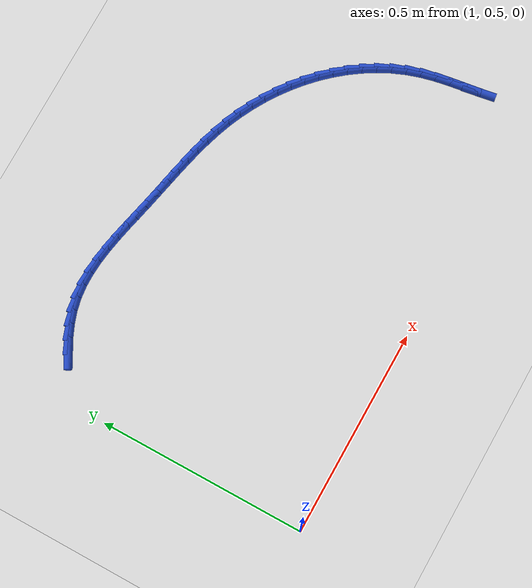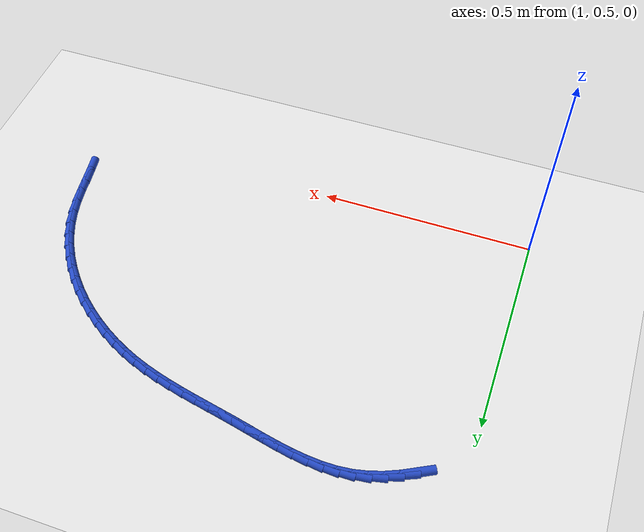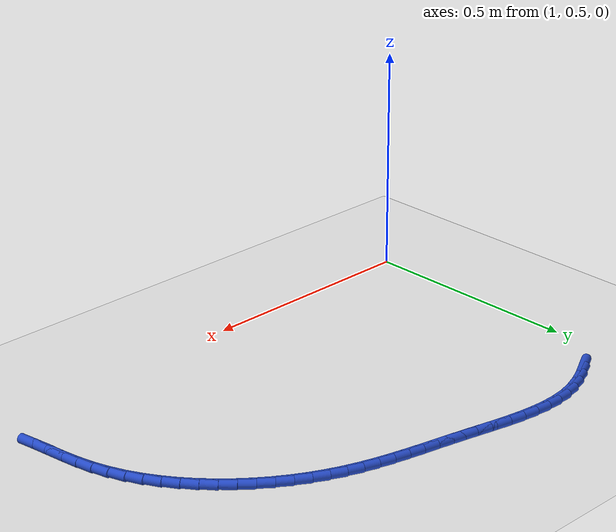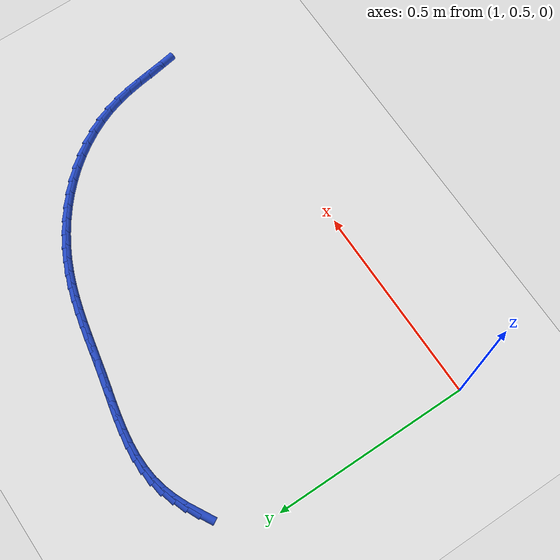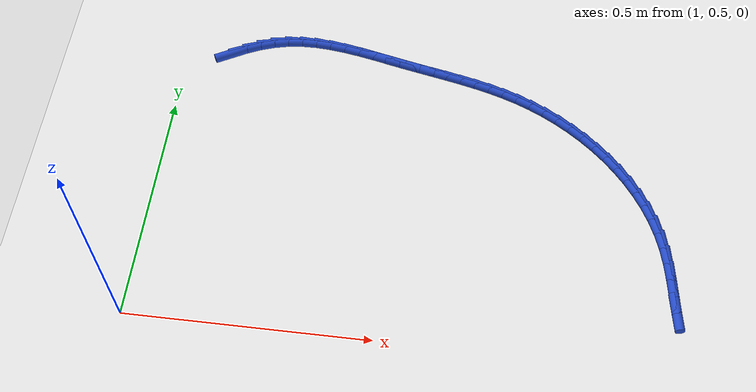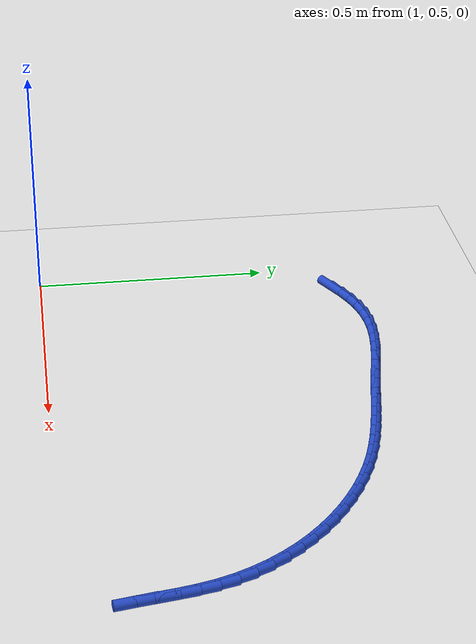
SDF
<sdf version="1.6">
 <world name="default">
  <model name="ground_plane">
   <static>1</static>
   <link name="link">
    <collision name="collision">
     <geometry><plane><normal>0 0 1</normal><size>100 100</size></plane></geometry>
     <surface><friction><ode><mu>100</mu><mu2>50</mu2></ode></friction></surface>
    </collision>
    <visual name="visual">
     <cast_shadows>0</cast_shadows>
     <geometry><plane><normal>0 0 1</normal><size>100 100</size></plane></geometry>
     <material>
      <script><uri>file://media/materials/scripts/gazebo.material</uri><name>Gazebo/WhiteGlow</name></script>
     </material>
    </visual>
   </link>
  </model>
  <model name="line">
   <link name="link_55">
    <pose>1.0984428740891006 1.1482082732621441 0.01 0 1.57 0.49788148652644393</pose>
    <collision name="collision">
     <geometry><cylinder><radius>0.01</radius><length>0.08</length></cylinder></geometry>
    </collision>
    <visual name="visual">
     <material>
      <script><name>Gazebo/Blue</name><uri>file://media/materials/scripts/gazebo.material</uri></script>
     </material>
     <geometry><cylinder><radius>0.01</radius><length>0.08</length></cylinder></geometry>
    </visual>
   </link>
   <link name="link_56">
    <pose>1.1272601869756693 1.1638720645824843 0.01 0 1.57 0.41964210380648614</pose>
    <collision name="collision">
     <geometry><cylinder><radius>0.01</radius><length>0.08</length></cylinder></geometry>
    </collision>
    <visual name="visual">
     <material>
      <script><name>Gazebo/Blue</name><uri>file://media/materials/scripts/gazebo.material</uri></script>
     </material>
     <geometry><cylinder><radius>0.01</radius><length>0.08</length></cylinder></geometry>
    </visual>
   </link>
   <link name="link_57">
    <pose>1.1566703030461838 1.1769931921280947 0.01 0 1.57 0.3279196526299374</pose>
    <collision name="collision">
     <geometry><cylinder><radius>0.01</radius><length>0.08</length></cylinder></geometry>
    </collision>
    <visual name="visual">
     <material>
      <script><name>Gazebo/Blue</name><uri>file://media/materials/scripts/gazebo.material</uri></script>
     </material>
     <geometry><cylinder><radius>0.01</radius><length>0.08</length></cylinder></geometry>
    </visual>
   </link>
   <link name="link_58">
    <pose>1.1867256022981238 1.1872180680124333 0.01 0 1.57 0.22303592653227677</pose>
    <collision name="collision">
     <geometry><cylinder><radius>0.01</radius><length>0.08</length></cylinder></geometry>
    </collision>
    <visual name="visual">
     <material>
      <script><name>Gazebo/Blue</name><uri>file://media/materials/scripts/gazebo.material</uri></script>
     </material>
     <geometry><cylinder><radius>0.01</radius><length>0.08</length></cylinder></geometry>
    </visual>
   </link>
   <link name="link_59">
    <pose>1.2174784647289691 1.1941931043489578 0.01 0 1.57 0.11048410661142259</pose>
    <collision name="collision">
     <geometry><cylinder><radius>0.01</radius><length>0.08</length></cylinder></geometry>
    </collision>
    <visual name="visual">
     <material>
      <script><name>Gazebo/Blue</name><uri>file://media/materials/scripts/gazebo.material</uri></script>
     </material>
     <geometry><cylinder><radius>0.01</radius><length>0.08</length></cylinder></geometry>
    </visual>
   </link>
   <link name="link_60">
    <pose>1.2489569885513387 1.197685201545745 0.01 0 1.57 0.010984286786511463</pose>
    <collision name="collision">
     <geometry><cylinder><radius>0.01</radius><length>0.08</length></cylinder></geometry>
    </collision>
    <visual name="visual">
     <material>
      <script><name>Gazebo/Blue</name><uri>file://media/materials/scripts/gazebo.material</uri></script>
     </material>
     <geometry><cylinder><radius>0.01</radius><length>0.08</length></cylinder></geometry>
    </visual>
   </link>
   <link name="link_61">
    <pose>1.2810730451032468 1.1980379877098966 0.01 0 1.57 -0.06947088128762369</pose>
    <collision name="collision">
     <geometry><cylinder><radius>0.01</radius><length>0.08</length></cylinder></geometry>
    </collision>
    <visual name="visual">
     <material>
      <script><name>Gazebo/Blue</name><uri>file://media/materials/scripts/gazebo.material</uri></script>
     </material>
     <geometry><cylinder><radius>0.01</radius><length>0.08</length></cylinder></geometry>
    </visual>
   </link>
   <link name="link_62">
    <pose>1.31370377080805 1.19576744856781 0.01 0 1.57 -0.13180299623149003</pose>
    <collision name="collision">
     <geometry><cylinder><radius>0.01</radius><length>0.08</length></cylinder></geometry>
    </collision>
    <visual name="visual">
     <material>
      <script><name>Gazebo/Blue</name><uri>file://media/materials/scripts/gazebo.material</uri></script>
     </material>
     <geometry><cylinder><radius>0.01</radius><length>0.08</length></cylinder></geometry>
    </visual>
   </link>
   <link name="link_63">
    <pose>1.3467262958686452 1.1913896007123346 0.01 0 1.57 -0.1774143047019592</pose>
    <collision name="collision">
     <geometry><cylinder><radius>0.01</radius><length>0.08</length></cylinder></geometry>
    </collision>
    <visual name="visual">
     <material>
      <script><name>Gazebo/Blue</name><uri>file://media/materials/scripts/gazebo.material</uri></script>
     </material>
     <geometry><cylinder><radius>0.01</radius><length>0.08</length></cylinder></geometry>
    </visual>
   </link>
   <link name="link_64">
    <pose>1.3800177504879305 1.1854204607363203 0.01 0 1.57 -0.2076376558232692</pose>
    <collision name="collision">
     <geometry><cylinder><radius>0.01</radius><length>0.08</length></cylinder></geometry>
    </collision>
    <visual name="visual">
     <material>
      <script><name>Gazebo/Blue</name><uri>file://media/materials/scripts/gazebo.material</uri></script>
     </material>
     <geometry><cylinder><radius>0.01</radius><length>0.08</length></cylinder></geometry>
    </visual>
   </link>
   <link name="link_65">
    <pose>1.4134552648688032 1.178376045232617 0.01 0 1.57 -0.22344729937029575</pose>
    <collision name="collision">
     <geometry><cylinder><radius>0.01</radius><length>0.08</length></cylinder></geometry>
    </collision>
    <visual name="visual">
     <material>
      <script><name>Gazebo/Blue</name><uri>file://media/materials/scripts/gazebo.material</uri></script>
     </material>
     <geometry><cylinder><radius>0.01</radius><length>0.08</length></cylinder></geometry>
    </visual>
   </link>
   <link name="link_66">
    <pose>1.4469159692141609 1.1707723707940743 0.01 0 1.57 -0.2253246809924111</pose>
    <collision name="collision">
     <geometry><cylinder><radius>0.01</radius><length>0.08</length></cylinder></geometry>
    </collision>
    <visual name="visual">
     <material>
      <script><name>Gazebo/Blue</name><uri>file://media/materials/scripts/gazebo.material</uri></script>
     </material>
     <geometry><cylinder><radius>0.01</radius><length>0.08</length></cylinder></geometry>
    </visual>
   </link>
   <link name="link_67">
    <pose>1.480276993726901 1.1631254540135423 0.01 0 1.57 -0.21560855269663176</pose>
    <collision name="collision">
     <geometry><cylinder><radius>0.01</radius><length>0.08</length></cylinder></geometry>
    </collision>
    <visual name="visual">
     <material>
      <script><name>Gazebo/Blue</name><uri>file://media/materials/scripts/gazebo.material</uri></script>
     </material>
     <geometry><cylinder><radius>0.01</radius><length>0.08</length></cylinder></geometry>
    </visual>
   </link>
   <link name="link_68">
    <pose>1.5134262525850586 1.1558653396549476 0.01 0 1.57 -0.20876481389615256</pose>
    <collision name="collision">
     <geometry><cylinder><radius>0.01</radius><length>0.08</length></cylinder></geometry>
    </collision>
    <visual name="visual">
     <material>
      <script><name>Gazebo/Blue</name><uri>file://media/materials/scripts/gazebo.material</uri></script>
     </material>
     <geometry><cylinder><radius>0.01</radius><length>0.08</length></cylinder></geometry>
    </visual>
   </link>
   <link name="link_69">
    <pose>1.5463174875717518 1.148897282733533 0.01 0 1.57 -0.21052108686653578</pose>
    <collision name="collision">
     <geometry><cylinder><radius>0.01</radius><length>0.08</length></cylinder></geometry>
    </collision>
    <visual name="visual">
     <material>
      <script><name>Gazebo/Blue</name><uri>file://media/materials/scripts/gazebo.material</uri></script>
     </material>
     <geometry><cylinder><radius>0.01</radius><length>0.08</length></cylinder></geometry>
    </visual>
   </link>
   <link name="link_70">
    <pose>1.5789292741945764 1.1419285592553978 0.01 0 1.57 -0.22109387741301262</pose>
    <collision name="collision">
     <geometry><cylinder><radius>0.01</radius><length>0.08</length></cylinder></geometry>
    </collision>
    <visual name="visual">
     <material>
      <script><name>Gazebo/Blue</name><uri>file://media/materials/scripts/gazebo.material</uri></script>
     </material>
     <geometry><cylinder><radius>0.01</radius><length>0.08</length></cylinder></geometry>
    </visual>
   </link>
   <link name="link_71">
    <pose>1.6112402337181555 1.1346660804432311 0.01 0 1.57 -0.2406234395353036</pose>
    <collision name="collision">
     <geometry><cylinder><radius>0.01</radius><length>0.08</length></cylinder></geometry>
    </collision>
    <visual name="visual">
     <material>
      <script><name>Gazebo/Blue</name><uri>file://media/materials/scripts/gazebo.material</uri></script>
     </material>
     <geometry><cylinder><radius>0.01</radius><length>0.08</length></cylinder></geometry>
    </visual>
   </link>
   <link name="link_72">
    <pose>1.6432289874071124 1.1268167575197203 0.01 0 1.57 -0.26915439524321966</pose>
    <collision name="collision">
     <geometry><cylinder><radius>0.01</radius><length>0.08</length></cylinder></geometry>
    </collision>
    <visual name="visual">
     <material>
      <script><name>Gazebo/Blue</name><uri>file://media/materials/scripts/gazebo.material</uri></script>
     </material>
     <geometry><cylinder><radius>0.01</radius><length>0.08</length></cylinder></geometry>
    </visual>
   </link>
   <link name="link_73">
    <pose>1.6748741565260692 1.1180875017075547 0.01 0 1.57 -0.3065856337871052</pose>
    <collision name="collision">
     <geometry><cylinder><radius>0.01</radius><length>0.08</length></cylinder></geometry>
    </collision>
    <visual name="visual">
     <material>
      <script><name>Gazebo/Blue</name><uri>file://media/materials/scripts/gazebo.material</uri></script>
     </material>
     <geometry><cylinder><radius>0.01</radius><length>0.08</length></cylinder></geometry>
    </visual>
   </link>
   <link name="link_74">
    <pose>1.7061543623396493 1.1081852242294221 0.01 0 1.57 -0.35260381337323</pose>
    <collision name="collision">
     <geometry><cylinder><radius>0.01</radius><length>0.08</length></cylinder></geometry>
    </collision>
    <visual name="visual">
     <material>
      <script><name>Gazebo/Blue</name><uri>file://media/materials/scripts/gazebo.material</uri></script>
     </material>
     <geometry><cylinder><radius>0.01</radius><length>0.08</length></cylinder></geometry>
    </visual>
   </link>
   <link name="link_75">
    <pose>1.7370482261124753 1.0968168363080113 0.01 0 1.57 -0.4064503517024111</pose>
    <collision name="collision">
     <geometry><cylinder><radius>0.01</radius><length>0.08</length></cylinder></geometry>
    </collision>
    <visual name="visual">
     <material>
      <script><name>Gazebo/Blue</name><uri>file://media/materials/scripts/gazebo.material</uri></script>
     </material>
     <geometry><cylinder><radius>0.01</radius><length>0.08</length></cylinder></geometry>
    </visual>
   </link>
   <link name="link_76">
    <pose>1.7675313731486328 1.0836963564998445 0.01 0 1.57 -0.4637284282777598</pose>
    <collision name="collision">
     <geometry><cylinder><radius>0.01</radius><length>0.08</length></cylinder></geometry>
    </collision>
    <visual name="visual">
     <material>
      <script><name>Gazebo/Blue</name><uri>file://media/materials/scripts/gazebo.material</uri></script>
     </material>
     <geometry><cylinder><radius>0.01</radius><length>0.08</length></cylinder></geometry>
    </visual>
   </link>
   <link name="link_77">
    <pose>1.7975091962352867 1.068704416351643 0.01 0 1.57 -0.5208827515376342</pose>
    <collision name="collision">
     <geometry><cylinder><radius>0.01</radius><length>0.08</length></cylinder></geometry>
    </collision>
    <visual name="visual">
     <material>
      <script><name>Gazebo/Blue</name><uri>file://media/materials/scripts/gazebo.material</uri></script>
     </material>
     <geometry><cylinder><radius>0.01</radius><length>0.08</length></cylinder></geometry>
    </visual>
   </link>
   <link name="link_78">
    <pose>1.8268161113073254 1.0518900261912338 0.01 0 1.57 -0.578265450117996</pose>
    <collision name="collision">
     <geometry><cylinder><radius>0.01</radius><length>0.08</length></cylinder></geometry>
    </collision>
    <visual name="visual">
     <material>
      <script><name>Gazebo/Blue</name><uri>file://media/materials/scripts/gazebo.material</uri></script>
     </material>
     <geometry><cylinder><radius>0.01</radius><length>0.08</length></cylinder></geometry>
    </visual>
   </link>
   <link name="link_79">
    <pose>1.8552833894668423 1.0333096568507618 0.01 0 1.57 -0.6363706577211106</pose>
    <collision name="collision">
     <geometry><cylinder><radius>0.01</radius><length>0.08</length></cylinder></geometry>
    </collision>
    <visual name="visual">
     <material>
      <script><name>Gazebo/Blue</name><uri>file://media/materials/scripts/gazebo.material</uri></script>
     </material>
     <geometry><cylinder><radius>0.01</radius><length>0.08</length></cylinder></geometry>
    </visual>
   </link>
   <link name="link_80">
    <pose>1.88274230181593 1.013019779162372 0.01 0 1.57 -0.695667213584342</pose>
    <collision name="collision">
     <geometry><cylinder><radius>0.01</radius><length>0.08</length></cylinder></geometry>
    </collision>
    <visual name="visual">
     <material>
      <script><name>Gazebo/Blue</name><uri>file://media/materials/scripts/gazebo.material</uri></script>
     </material>
     <geometry><cylinder><radius>0.01</radius><length>0.08</length></cylinder></geometry>
    </visual>
   </link>
   <link name="link_81">
    <pose>1.909024119456681 0.9910768639582103 0.01 0 1.57 -0.7565974972201347</pose>
    <collision name="collision">
     <geometry><cylinder><radius>0.01</radius><length>0.08</length></cylinder></geometry>
    </collision>
    <visual name="visual">
     <material>
      <script><name>Gazebo/Blue</name><uri>file://media/materials/scripts/gazebo.material</uri></script>
     </material>
     <geometry><cylinder><radius>0.01</radius><length>0.08</length></cylinder></geometry>
    </visual>
   </link>
   <link name="link_82">
    <pose>1.9339601134911888 0.9675373820704216 0.01 0 1.57 -0.819572510224236</pose>
    <collision name="collision">
     <geometry><cylinder><radius>0.01</radius><length>0.08</length></cylinder></geometry>
    </collision>
    <visual name="visual">
     <material>
      <script><name>Gazebo/Blue</name><uri>file://media/materials/scripts/gazebo.material</uri></script>
     </material>
     <geometry><cylinder><radius>0.01</radius><length>0.08</length></cylinder></geometry>
    </visual>
   </link>
   <link name="link_83">
    <pose>1.9573815550215454 0.9424578043311503 0.01 0 1.57 -0.8849624031255212</pose>
    <collision name="collision">
     <geometry><cylinder><radius>0.01</radius><length>0.08</length></cylinder></geometry>
    </collision>
    <visual name="visual">
     <material>
      <script><name>Gazebo/Blue</name><uri>file://media/materials/scripts/gazebo.material</uri></script>
     </material>
     <geometry><cylinder><radius>0.01</radius><length>0.08</length></cylinder></geometry>
    </visual>
   </link>
   <link name="link_84">
    <pose>1.979119715149844 0.9158946015725429 0.01 0 1.57 -0.9530818018559315</pose>
    <collision name="collision">
     <geometry><cylinder><radius>0.01</radius><length>0.08</length></cylinder></geometry>
    </collision>
    <visual name="visual">
     <material>
      <script><name>Gazebo/Blue</name><uri>file://media/materials/scripts/gazebo.material</uri></script>
     </material>
     <geometry><cylinder><radius>0.01</radius><length>0.08</length></cylinder></geometry>
    </visual>
   </link>
   <link name="link_85">
    <pose>1.9990058649781774 0.8879042446267433 0.01 0 1.57 -1.0241697038850872</pose>
    <collision name="collision">
     <geometry><cylinder><radius>0.01</radius><length>0.08</length></cylinder></geometry>
    </collision>
    <visual name="visual">
     <material>
      <script><name>Gazebo/Blue</name><uri>file://media/materials/scripts/gazebo.material</uri></script>
     </material>
     <geometry><cylinder><radius>0.01</radius><length>0.08</length></cylinder></geometry>
    </visual>
   </link>
   <link name="link_86">
    <pose>2.0168712756086378 0.8585432043258979 0.01 0 1.57 -1.0983645292709487</pose>
    <collision name="collision">
     <geometry><cylinder><radius>0.01</radius><length>0.08</length></cylinder></geometry>
    </collision>
    <visual name="visual">
     <material>
      <script><name>Gazebo/Blue</name><uri>file://media/materials/scripts/gazebo.material</uri></script>
     </material>
     <geometry><cylinder><radius>0.01</radius><length>0.08</length></cylinder></geometry>
    </visual>
   </link>
   <link name="link_87">
    <pose>2.0325472181433186 0.8278679515021512 0.01 0 1.57 -1.1756762187444605</pose>
    <collision name="collision">
     <geometry><cylinder><radius>0.01</radius><length>0.08</length></cylinder></geometry>
    </collision>
    <visual name="visual">
     <material>
      <script><name>Gazebo/Blue</name><uri>file://media/materials/scripts/gazebo.material</uri></script>
     </material>
     <geometry><cylinder><radius>0.01</radius><length>0.08</length></cylinder></geometry>
    </visual>
   </link>
   <link name="link_88">
    <pose>2.0458649636843123 0.7959349569876483 0.01 0 1.57 -1.2559590067382904</pose>
    <collision name="collision">
     <geometry><cylinder><radius>0.01</radius><length>0.08</length></cylinder></geometry>
    </collision>
    <visual name="visual">
     <material>
      <script><name>Gazebo/Blue</name><uri>file://media/materials/scripts/gazebo.material</uri></script>
     </material>
     <geometry><cylinder><radius>0.01</radius><length>0.08</length></cylinder></geometry>
    </visual>
   </link>
   <link name="link_89">
    <pose>2.0566557833337122 0.7628006916145348 0.01 0 1.57 -1.3350192609980818</pose>
    <collision name="collision">
     <geometry><cylinder><radius>0.01</radius><length>0.08</length></cylinder></geometry>
    </collision>
    <visual name="visual">
     <material>
      <script><name>Gazebo/Blue</name><uri>file://media/materials/scripts/gazebo.material</uri></script>
     </material>
     <geometry><cylinder><radius>0.01</radius><length>0.08</length></cylinder></geometry>
    </visual>
   </link>
   <link name="link_90">
    <pose>2.06487830559021 0.7285751873243037 0.01 0 1.57 -1.3927958169137706</pose>
    <collision name="collision">
     <geometry><cylinder><radius>0.01</radius><length>0.08</length></cylinder></geometry>
    </collision>
    <visual name="visual">
     <material>
      <script><name>Gazebo/Blue</name><uri>file://media/materials/scripts/gazebo.material</uri></script>
     </material>
     <geometry><cylinder><radius>0.01</radius><length>0.08</length></cylinder></geometry>
    </visual>
   </link>
   <link name="link_91">
    <pose>2.071161440493256 0.6936503679929382 0.01 0 1.57 -1.4240942307007172</pose>
    <collision name="collision">
     <geometry><cylinder><radius>0.01</radius><length>0.08</length></cylinder></geometry>
    </collision>
    <visual name="visual">
     <material>
      <script><name>Gazebo/Blue</name><uri>file://media/materials/scripts/gazebo.material</uri></script>
     </material>
     <geometry><cylinder><radius>0.01</radius><length>0.08</length></cylinder></geometry>
    </visual>
   </link>
   <link name="link_92">
    <pose>2.0763538260127974 0.6585105657273227 0.01 0 1.57 -1.429772955754959</pose>
    <collision name="collision">
     <geometry><cylinder><radius>0.01</radius><length>0.08</length></cylinder></geometry>
    </collision>
    <visual name="visual">
     <material>
      <script><name>Gazebo/Blue</name><uri>file://media/materials/scripts/gazebo.material</uri></script>
     </material>
     <geometry><cylinder><radius>0.01</radius><length>0.08</length></cylinder></geometry>
    </visual>
   </link>
   <link name="link_93">
    <pose>2.081304228053599 0.6236401664382921 0.01 0 1.57 -1.409326483732874</pose>
    <collision name="collision">
     <geometry><cylinder><radius>0.01</radius><length>0.08</length></cylinder></geometry>
    </collision>
    <visual name="visual">
     <material>
      <script><name>Gazebo/Blue</name><uri>file://media/materials/scripts/gazebo.material</uri></script>
     </material>
     <geometry><cylinder><radius>0.01</radius><length>0.08</length></cylinder></geometry>
    </visual>
   </link>
  </model>
 </world>
</sdf>
